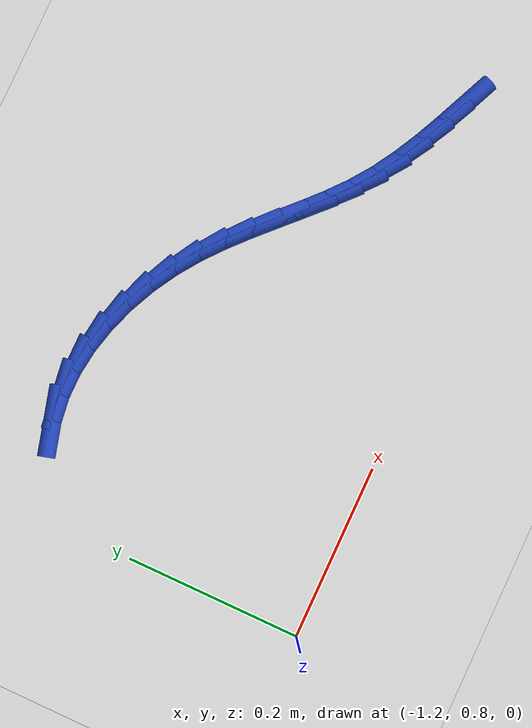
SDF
<sdf version="1.6">
 <world name="default">
  <model name="ground_plane">
   <static>1</static>
   <link name="link">
    <collision name="collision">
     <geometry><plane><normal>0 0 1</normal><size>100 100</size></plane></geometry>
     <surface><friction><ode><mu>100</mu><mu2>50</mu2></ode></friction></surface>
    </collision>
    <visual name="visual">
     <cast_shadows>0</cast_shadows>
     <geometry><plane><normal>0 0 1</normal><size>100 100</size></plane></geometry>
     <material>
      <script><uri>file://media/materials/scripts/gazebo.material</uri><name>Gazebo/WhiteGlow</name></script>
     </material>
    </visual>
   </link>
  </model>
  <model name="line">
   <link name="link_36">
    <pose>-0.5942911958506975 0.876053013886275 0.01 0 1.57 -0.41246592205005195</pose>
    <collision name="collision">
     <geometry><cylinder><radius>0.01</radius><length>0.08</length></cylinder></geometry>
    </collision>
    <visual name="visual">
     <material>
      <script><name>Gazebo/Blue</name><uri>file://media/materials/scripts/gazebo.material</uri></script>
     </material>
     <geometry><cylinder><radius>0.01</radius><length>0.08</length></cylinder></geometry>
    </visual>
   </link>
   <link name="link_37">
    <pose>-0.6228311310407245 0.8885411220605159 0.01 0 1.57 -0.4380169923599859</pose>
    <collision name="collision">
     <geometry><cylinder><radius>0.01</radius><length>0.08</length></cylinder></geometry>
    </collision>
    <visual name="visual">
     <material>
      <script><name>Gazebo/Blue</name><uri>file://media/materials/scripts/gazebo.material</uri></script>
     </material>
     <geometry><cylinder><radius>0.01</radius><length>0.08</length></cylinder></geometry>
    </visual>
   </link>
   <link name="link_38">
    <pose>-0.6508784017731817 0.9016773494489193 0.01 0 1.57 -0.48208787309147416</pose>
    <collision name="collision">
     <geometry><cylinder><radius>0.01</radius><length>0.08</length></cylinder></geometry>
    </collision>
    <visual name="visual">
     <material>
      <script><name>Gazebo/Blue</name><uri>file://media/materials/scripts/gazebo.material</uri></script>
     </material>
     <geometry><cylinder><radius>0.01</radius><length>0.08</length></cylinder></geometry>
    </visual>
   </link>
   <link name="link_39">
    <pose>-0.6780896548520442 0.9159161137346242 0.01 0 1.57 -0.5453925074964361</pose>
    <collision name="collision">
     <geometry><cylinder><radius>0.01</radius><length>0.08</length></cylinder></geometry>
    </collision>
    <visual name="visual">
     <material>
      <script><name>Gazebo/Blue</name><uri>file://media/materials/scripts/gazebo.material</uri></script>
     </material>
     <geometry><cylinder><radius>0.01</radius><length>0.08</length></cylinder></geometry>
    </visual>
   </link>
   <link name="link_40">
    <pose>-0.7041215370812866 0.9317118326007694 0.01 0 1.57 -0.6264170707911787</pose>
    <collision name="collision">
     <geometry><cylinder><radius>0.01</radius><length>0.08</length></cylinder></geometry>
    </collision>
    <visual name="visual">
     <material>
      <script><name>Gazebo/Blue</name><uri>file://media/materials/scripts/gazebo.material</uri></script>
     </material>
     <geometry><cylinder><radius>0.01</radius><length>0.08</length></cylinder></geometry>
    </visual>
   </link>
   <link name="link_41">
    <pose>-0.7286673550544754 0.9494742017059244 0.01 0 1.57 -0.6998584969151953</pose>
    <collision name="collision">
     <geometry><cylinder><radius>0.01</radius><length>0.08</length></cylinder></geometry>
    </collision>
    <visual name="visual">
     <material>
      <script><name>Gazebo/Blue</name><uri>file://media/materials/scripts/gazebo.material</uri></script>
     </material>
     <geometry><cylinder><radius>0.01</radius><length>0.08</length></cylinder></geometry>
    </visual>
   </link>
   <link name="link_42">
    <pose>-0.7518954859493154 0.9690333684195619 0.01 0 1.57 -0.7477128982914095</pose>
    <collision name="collision">
     <geometry><cylinder><radius>0.01</radius><length>0.08</length></cylinder></geometry>
    </collision>
    <visual name="visual">
     <material>
      <script><name>Gazebo/Blue</name><uri>file://media/materials/scripts/gazebo.material</uri></script>
     </material>
     <geometry><cylinder><radius>0.01</radius><length>0.08</length></cylinder></geometry>
    </visual>
   </link>
   <link name="link_43">
    <pose>-0.7743057446235722 0.9898151525294567 0.01 0 1.57 -0.7698439479143578</pose>
    <collision name="collision">
     <geometry><cylinder><radius>0.01</radius><length>0.08</length></cylinder></geometry>
    </collision>
    <visual name="visual">
     <material>
      <script><name>Gazebo/Blue</name><uri>file://media/materials/scripts/gazebo.material</uri></script>
     </material>
     <geometry><cylinder><radius>0.01</radius><length>0.08</length></cylinder></geometry>
    </visual>
   </link>
   <link name="link_44">
    <pose>-0.79640470680429 1.0112371261011406 0.01 0 1.57 -0.7667932204810358</pose>
    <collision name="collision">
     <geometry><cylinder><radius>0.01</radius><length>0.08</length></cylinder></geometry>
    </collision>
    <visual name="visual">
     <material>
      <script><name>Gazebo/Blue</name><uri>file://media/materials/scripts/gazebo.material</uri></script>
     </material>
     <geometry><cylinder><radius>0.01</radius><length>0.08</length></cylinder></geometry>
    </visual>
   </link>
   <link name="link_45">
    <pose>-0.8186989482185141 1.0327168612001452 0.01 0 1.57 -0.7389929681970252</pose>
    <collision name="collision">
     <geometry><cylinder><radius>0.01</radius><length>0.08</length></cylinder></geometry>
    </collision>
    <visual name="visual">
     <material>
      <script><name>Gazebo/Blue</name><uri>file://media/materials/scripts/gazebo.material</uri></script>
     </material>
     <geometry><cylinder><radius>0.01</radius><length>0.08</length></cylinder></geometry>
    </visual>
   </link>
   <link name="link_46">
    <pose>-0.841695044593289 1.0536719298920016 0.01 0 1.57 -0.6868241260423399</pose>
    <collision name="collision">
     <geometry><cylinder><radius>0.01</radius><length>0.08</length></cylinder></geometry>
    </collision>
    <visual name="visual">
     <material>
      <script><name>Gazebo/Blue</name><uri>file://media/materials/scripts/gazebo.material</uri></script>
     </material>
     <geometry><cylinder><radius>0.01</radius><length>0.08</length></cylinder></geometry>
    </visual>
   </link>
   <link name="link_47">
    <pose>-0.8658995716556599 1.073519904242242 0.01 0 1.57 -0.6113152807213914</pose>
    <collision name="collision">
     <geometry><cylinder><radius>0.01</radius><length>0.08</length></cylinder></geometry>
    </collision>
    <visual name="visual">
     <material>
      <script><name>Gazebo/Blue</name><uri>file://media/materials/scripts/gazebo.material</uri></script>
     </material>
     <geometry><cylinder><radius>0.01</radius><length>0.08</length></cylinder></geometry>
    </visual>
   </link>
   <link name="link_48">
    <pose>-0.891810783431696 1.0916805140291534 0.01 0 1.57 -0.5230464651785506</pose>
    <collision name="collision">
     <geometry><cylinder><radius>0.01</radius><length>0.08</length></cylinder></geometry>
    </collision>
    <visual name="visual">
     <material>
      <script><name>Gazebo/Blue</name><uri>file://media/materials/scripts/gazebo.material</uri></script>
     </material>
     <geometry><cylinder><radius>0.01</radius><length>0.08</length></cylinder></geometry>
    </visual>
   </link>
   <link name="link_49">
    <pose>-0.9195450785254147 1.107672499355635 0.01 0 1.57 -0.4332704797082813</pose>
    <collision name="collision">
     <geometry><cylinder><radius>0.01</radius><length>0.08</length></cylinder></geometry>
    </collision>
    <visual name="visual">
     <material>
      <script><name>Gazebo/Blue</name><uri>file://media/materials/scripts/gazebo.material</uri></script>
     </material>
     <geometry><cylinder><radius>0.01</radius><length>0.08</length></cylinder></geometry>
    </visual>
   </link>
   <link name="link_50">
    <pose>-0.9486861388794618 1.1211527270776018 0.01 0 1.57 -0.3397328080729792</pose>
    <collision name="collision">
     <geometry><cylinder><radius>0.01</radius><length>0.08</length></cylinder></geometry>
    </collision>
    <visual name="visual">
     <material>
      <script><name>Gazebo/Blue</name><uri>file://media/materials/scripts/gazebo.material</uri></script>
     </material>
     <geometry><cylinder><radius>0.01</radius><length>0.08</length></cylinder></geometry>
    </visual>
   </link>
   <link name="link_51">
    <pose>-0.9787781000762972 1.1317883179264738 0.01 0 1.57 -0.2391646798696684</pose>
    <collision name="collision">
     <geometry><cylinder><radius>0.01</radius><length>0.08</length></cylinder></geometry>
    </collision>
    <visual name="visual">
     <material>
      <script><name>Gazebo/Blue</name><uri>file://media/materials/scripts/gazebo.material</uri></script>
     </material>
     <geometry><cylinder><radius>0.01</radius><length>0.08</length></cylinder></geometry>
    </visual>
   </link>
   <link name="link_52">
    <pose>-1.0093650976983803 1.1392463926336716 0.01 0 1.57 -0.12819204238329432</pose>
    <collision name="collision">
     <geometry><cylinder><radius>0.01</radius><length>0.08</length></cylinder></geometry>
    </collision>
    <visual name="visual">
     <material>
      <script><name>Gazebo/Blue</name><uri>file://media/materials/scripts/gazebo.material</uri></script>
     </material>
     <geometry><cylinder><radius>0.01</radius><length>0.08</length></cylinder></geometry>
    </visual>
   </link>
   <link name="link_53">
    <pose>-1.0399912673281722 1.1431940719306162 0.01 0 1.57 -0.0034560082480642167</pose>
    <collision name="collision">
     <geometry><cylinder><radius>0.01</radius><length>0.08</length></cylinder></geometry>
    </collision>
    <visual name="visual">
     <material>
      <script><name>Gazebo/Blue</name><uri>file://media/materials/scripts/gazebo.material</uri></script>
     </material>
     <geometry><cylinder><radius>0.01</radius><length>0.08</length></cylinder></geometry>
    </visual>
   </link>
   <link name="link_54">
    <pose>-1.0702007445481323 1.1432984765487277 0.01 0 1.57 0.13528638625287295</pose>
    <collision name="collision">
     <geometry><cylinder><radius>0.01</radius><length>0.08</length></cylinder></geometry>
    </collision>
    <visual name="visual">
     <material>
      <script><name>Gazebo/Blue</name><uri>file://media/materials/scripts/gazebo.material</uri></script>
     </material>
     <geometry><cylinder><radius>0.01</radius><length>0.08</length></cylinder></geometry>
    </visual>
   </link>
   <link name="link_55">
    <pose>-1.0995854276476462 1.1392986972730166 0.01 0 1.57 0.267959387349577</pose>
    <collision name="collision">
     <geometry><cylinder><radius>0.01</radius><length>0.08</length></cylinder></geometry>
    </collision>
    <visual name="visual">
     <material>
      <script><name>Gazebo/Blue</name><uri>file://media/materials/scripts/gazebo.material</uri></script>
     </material>
     <geometry><cylinder><radius>0.01</radius><length>0.08</length></cylinder></geometry>
    </visual>
   </link>
  </model>
 </world>
</sdf>
